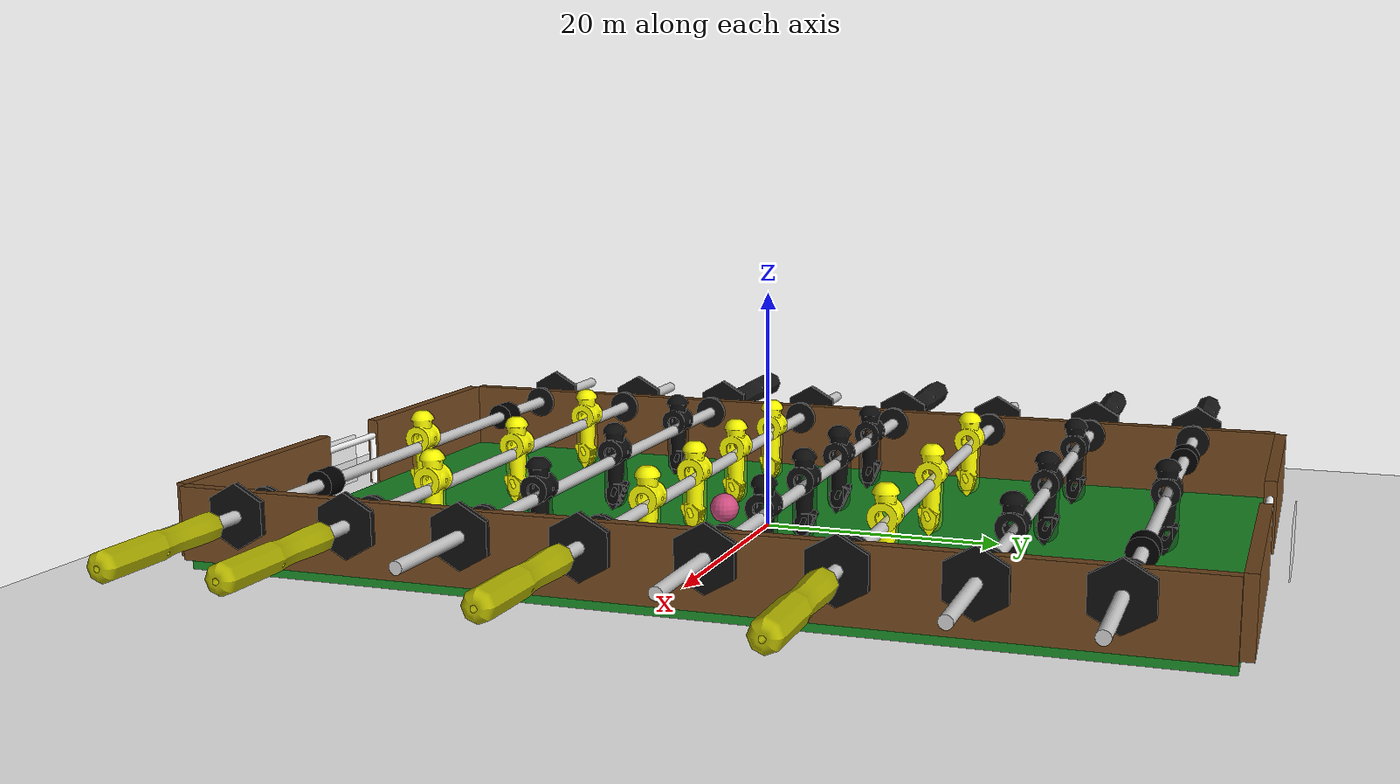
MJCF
<mujoco>
    <default>
      <default class="visual">
        <geom group="2" type="mesh"/>
      </default>
      <default class="collision">
        <geom group="3" type="mesh"/>
      </default>
    </default>

    <asset>
      <mesh name="guy" file="asset/foosman/mesh_down_foosman.obj" scale='0.07 0.07 0.07'/>
      <mesh name="handle" file="asset/handle/foosball_handle.obj" scale='0.1 0.1 0.1'/>
    </asset>

    <option sdf_iterations="20" sdf_initpoints="40">
      <flag contact="enable"/>
    </option>

    <visual>
      <map force="1000"/>
    </visual>

    <statistic meansize="0.2"/>

    <default>
      <geom solref="0.004 1" solimp=".99 .99 .00001" condim="4"/>
    </default>

    <include file="foosball_scene.xml"/>

    <worldbody>

      <!-- Yellow Goalie Rod — 1 player, Y=-33.25 -->
      <body name="y_goal_rod" pos="0 -33.25 4.8" euler="0 90 0">
        <joint name="y_goal_linear" type="slide" axis="0 0 1" range="-12 12"/>
        <joint name="y_goal_rotation" type="hinge" axis="0 0 1" range="-90.0 90.0"/>
        <inertial pos="0 0 0" mass="0.8" diaginertia="50 50 0.03"/>
        <geom name="y_goal_rod" type="cylinder" size="0.5 37" pos="0 0 0" rgba="0.8 0.8 0.8 1"/>
        <!-- Handle -->
        <body name="y_goal_rod_handle" pos="0 0 38" euler="180 0 0">
          <geom type="mesh" mesh="handle" mass='0.01' rgba='0.7 0.7 0.0 1'/>
        </body>
        <!-- Rubber bumpers (goalie gap = 32cm → bumpers at ±16) -->
        <body name="y_goal_rod_r_rubber" pos="0 0 -16" euler="0 0 90">
          <inertial pos="0 0 0" mass="0.05" diaginertia="0.002 0.002 0.003"/>
          <geom name="y_goal_rod_r_rubber" type="cylinder" friction="0.1" size="1.2 1.0" rgba="0.0 0.0 0.0 1"/>
        </body>
        <body name="y_goal_rod_l_rubber" pos="0 0 16" euler="0 0 90">
          <inertial pos="0 0 0" mass="0.05" diaginertia="0.002 0.002 0.003"/>
          <geom name="y_goal_rod_l_rubber" type="cylinder" friction="0.1" size="1.2 1.0" rgba="0.0 0.0 0.0 1"/>
        </body>
        <!-- 1 Yellow Goalkeeper -->
        <body name="y_goal_guy1" pos="0.284 -0.05 0" euler="180 -90 0">
          <inertial pos="0 0 0" mass="0.07" diaginertia="0.001 0.001 0.001"/>
          <geom type="mesh" name="y_goal_guy1_visual" mesh="guy" rgba="0.95 0.95 0.0 1" contype="0" conaffinity="0" group="2"/>
          <geom type="capsule" name="y_goal_guy1" size="1.0 2.0" pos="0 0 -1.0" rgba="0.95 0.95 0.0 0.3" friction="0.5 0.005 0.0001"/>
        </body>
      </body>

      <!-- Yellow Defense Rod — 3 players @ 15cm spacing, Y=-23.75 -->
      <body name="y_def_rod" pos="0 -23.75 4.8" euler="0 90 0">
        <joint name="y_def_linear" type="slide" axis="0 0 1" range="-12 12"/>
        <joint name="y_def_rotation" type="hinge" axis="0 0 1" range="-90.0 90.0"/>
        <inertial pos="0 0 0" mass="0.9" diaginertia="60 60 0.035"/>
        <geom name="y_def_rod" type="cylinder" size="0.5 37" pos="0 0 0" rgba="0.8 0.8 0.8 1"/>
        <body name="y_def_rod_handle" pos="0 0 38" euler="180 0 0">
          <geom type="mesh" mesh="handle" mass='0.01' rgba='0.7 0.7 0.0 1'/>
        </body>

<!-- 3 Yellow Defenders (spacing 15cm: -15, 0, +15) -->
        <body name="y_def_guy1" pos="0.284 -0.05 -15" euler="180 -90 0">
          <inertial pos="0 0 0" mass="0.07" diaginertia="0.001 0.001 0.001"/>
          <geom type="mesh" name="y_def_guy1_visual" mesh="guy" rgba="0.95 0.95 0.0 1" contype="0" conaffinity="0" group="2"/>
          <geom type="capsule" name="y_def_guy1" size="1.0 2.0" pos="0 0 -1.0" rgba="0.95 0.95 0.0 0.3" friction="0.5 0.005 0.0001"/>
        </body>
        <body name="y_def_guy2" pos="0.284 -0.05 0" euler="180 -90 0">
          <inertial pos="0 0 0" mass="0.07" diaginertia="0.001 0.001 0.001"/>
          <geom type="mesh" name="y_def_guy2_visual" mesh="guy" rgba="0.95 0.95 0.0 1" contype="0" conaffinity="0" group="2"/>
          <geom type="capsule" name="y_def_guy2" size="1.0 2.0" pos="0 0 -1.0" rgba="0.95 0.95 0.0 0.3" friction="0.5 0.005 0.0001"/>
        </body>
        <body name="y_def_guy3" pos="0.284 -0.05 15" euler="180 -90 0">
          <inertial pos="0 0 0" mass="0.07" diaginertia="0.001 0.001 0.001"/>
          <geom type="mesh" name="y_def_guy3_visual" mesh="guy" rgba="0.95 0.95 0.0 1" contype="0" conaffinity="0" group="2"/>
          <geom type="capsule" name="y_def_guy3" size="1.0 2.0" pos="0 0 -1.0" rgba="0.95 0.95 0.0 0.3" friction="0.5 0.005 0.0001"/>
        </body>
      </body>

      <!-- Yellow Midfield Rod — 4 players @ 10.2cm spacing, Y=-4.75 -->
      <body name="y_mid_rod" pos="0 -4.75 4.8" euler="0 90 0">
        <joint name="y_mid_linear" type="slide" axis="0 0 1" range="-12 12"/>
        <joint name="y_mid_rotation" type="hinge" axis="0 0 1" range="-90.0 90.0"/>
        <inertial pos="0 0 0" mass="0.85" diaginertia="55 55 0.032"/>
        <geom type="cylinder" size="0.5 37" pos="0 0 0" rgba="0.8 0.8 0.8 1"/>
        <body name="y_mid_rod_handle" pos="0 0 38" euler="180 0 0">
          <geom type="mesh" mesh="handle" mass='0.01' rgba='0.7 0.7 0.0 1'/>
        </body>

<!-- 4 Yellow Midfielders (spacing 10.2cm: -15.3, -5.1, +5.1, +15.3) -->
        <body name="y_mid_guy1" pos="0.284 -0.05 -15.3" euler="180 -90 0">
          <inertial pos="0 0 0" mass="0.07" diaginertia="0.001 0.001 0.001"/>
          <geom type="mesh" name="y_mid_guy1_visual" mesh="guy" rgba="0.95 0.95 0.0 1" contype="0" conaffinity="0" group="2"/>
          <geom type="capsule" name="y_mid_guy1" size="1.0 2.0" pos="0 0 -1.0" rgba="0.95 0.95 0.0 0.3" friction="0.5 0.005 0.0001"/>
        </body>
        <body name="y_mid_guy2" pos="0.284 -0.05 -5.1" euler="180 -90 0">
          <inertial pos="0 0 0" mass="0.07" diaginertia="0.001 0.001 0.001"/>
          <geom type="mesh" name="y_mid_guy2_visual" mesh="guy" rgba="0.95 0.95 0.0 1" contype="0" conaffinity="0" group="2"/>
          <geom type="capsule" name="y_mid_guy2" size="1.0 2.0" pos="0 0 -1.0" rgba="0.95 0.95 0.0 0.3" friction="0.5 0.005 0.0001"/>
        </body>
        <body name="y_mid_guy3" pos="0.284 -0.05 5.1" euler="180 -90 0">
          <inertial pos="0 0 0" mass="0.07" diaginertia="0.001 0.001 0.001"/>
          <geom type="mesh" name="y_mid_guy3_visual" mesh="guy" rgba="0.95 0.95 0.0 1" contype="0" conaffinity="0" group="2"/>
          <geom type="capsule" name="y_mid_guy3" size="1.0 2.0" pos="0 0 -1.0" rgba="0.95 0.95 0.0 0.3" friction="0.5 0.005 0.0001"/>
        </body>
        <body name="y_mid_guy4" pos="0.284 -0.05 15.3" euler="180 -90 0">
          <inertial pos="0 0 0" mass="0.07" diaginertia="0.001 0.001 0.001"/>
          <geom type="mesh" name="y_mid_guy4_visual" mesh="guy" rgba="0.95 0.95 0.0 1" contype="0" conaffinity="0" group="2"/>
          <geom type="capsule" name="y_mid_guy4" size="1.0 2.0" pos="0 0 -1.0" rgba="0.95 0.95 0.0 0.3" friction="0.5 0.005 0.0001"/>
        </body>
      </body>

      <!-- Yellow Attack Rod — 3 players @ 15cm spacing, Y=14.25 -->
      <body name="y_attack_rod" pos="0 14.25 4.8" euler="0 90 0">
        <joint name="y_attack_linear" type="slide" axis="0 0 1" range="-12 12"/>
        <joint name="y_attack_rotation" type="hinge" axis="0 0 1" range="-90.0 90.0"/>
        <inertial pos="0 0 0" mass="0.9" diaginertia="60 60 0.035"/>
        <geom name="y_attack_rod" type="cylinder" size="0.5 37" pos="0 0 0" rgba="0.8 0.8 0.8 1"/>
        <body name="y_attack_rod_handle" pos="0 0 38" euler="180 0 0">
          <geom type="mesh" mesh="handle" mass='0.01' rgba='0.7 0.7 0.0 1'/>
        </body>

<!-- 3 Yellow Attackers (spacing 15cm: -15, 0, +15) -->
        <body name="y_attack_guy1" pos="0.284 -0.05 -15" euler="180 -90 0">
          <inertial pos="0 0 0" mass="0.07" diaginertia="0.001 0.001 0.001"/>
          <geom type="mesh" name="y_attack_guy1_visual" mesh="guy" rgba="0.95 0.95 0.0 1" contype="0" conaffinity="0" group="2"/>
          <geom type="capsule" name="y_attack_guy1" size="1.0 2.0" pos="0 0 -1.0" rgba="0.95 0.95 0.0 0.3" friction="0.5 0.005 0.0001"/>
        </body>
        <body name="y_attack_guy2" pos="0.284 -0.05 0" euler="180 -90 0">
          <inertial pos="0 0 0" mass="0.07" diaginertia="0.001 0.001 0.001"/>
          <geom type="mesh" name="y_attack_guy2_visual" mesh="guy" rgba="0.95 0.95 0.0 1" contype="0" conaffinity="0" group="2"/>
          <geom type="capsule" name="y_attack_guy2" size="1.0 2.0" pos="0 0 -1.0" rgba="0.95 0.95 0.0 0.3" friction="0.5 0.005 0.0001"/>
        </body>
        <body name="y_attack_guy3" pos="0.284 -0.05 15" euler="180 -90 0">
          <inertial pos="0 0 0" mass="0.07" diaginertia="0.001 0.001 0.001"/>
          <geom type="mesh" name="y_attack_guy3_visual" mesh="guy" rgba="0.95 0.95 0.0 1" contype="0" conaffinity="0" group="2"/>
          <geom type="capsule" name="y_attack_guy3" size="1.0 2.0" pos="0 0 -1.0" rgba="0.95 0.95 0.0 0.3" friction="0.5 0.005 0.0001"/>
        </body>
      </body>

      <!-- Blue Goalie Rod — 1 player, Y=33.25 -->
      <body name="b_goal_rod" pos="0 33.25 4.8" euler="0 -90 180">
        <joint name="b_goal_linear" type="slide" axis="0 0 1" range="-12 12"/>
        <joint name="b_goal_rotation" type="hinge" axis="0 0 1" range="-90.0 90.0"/>
        <inertial pos="0 0 0" mass="0.8" diaginertia="50 50 0.03"/>
        <geom name="b_goal_rod" type="cylinder" size="0.5 37" pos="0 0 0" rgba="0.8 0.8 0.8 1"/>
        <body name="b_goal_rod_handle" pos="0 0 38" euler="180 0 0">
          <geom type="mesh" mesh="handle" mass='0.01' rgba='0.1 0.1 0.1 1'/>
        </body>
        <body name="b_goal_rod_r_rubber" pos="0 0 -16" euler="0 0 90">
          <inertial pos="0 0 0" mass="0.05" diaginertia="0.002 0.002 0.003"/>
          <geom name="b_goal_rod_r_rubber" type="cylinder" friction="0.1" size="1.2 1.0" rgba="0.0 0.0 0.0 1"/>
        </body>
        <body name="b_goal_rod_l_rubber" pos="0 0 16" euler="0 0 90">
          <inertial pos="0 0 0" mass="0.05" diaginertia="0.002 0.002 0.003"/>
          <geom name="b_goal_rod_l_rubber" type="cylinder" friction="0.1" size="1.2 1.0" rgba="0.0 0.0 0.0 1"/>
        </body>
        <!-- 1 Blue Goalkeeper -->
        <body name="b_goal_guy1" pos="0.284 -0.05 0" euler="180 -90 0">
          <inertial pos="0 0 0" mass="0.07" diaginertia="0.001 0.001 0.001"/>
          <geom type="mesh" name="b_goal_guy1_visual" mesh="guy" rgba="0.05 0.05 0.05 1" contype="0" conaffinity="0" group="2"/>
          <geom type="capsule" name="b_goal_guy1" size="1.0 2.0" pos="0 0 -1.0" rgba="0.05 0.05 0.05 0.3" friction="0.5 0.005 0.0001"/>
        </body>
      </body>

      <!-- Blue Defense Rod — 3 players @ 15cm spacing, Y=23.75 -->
      <body name="b_def_rod" pos="0 23.75 4.8" euler="0 -90 180">
        <joint name="b_def_linear" type="slide" axis="0 0 1" range="-12 12"/>
        <joint name="b_def_rotation" type="hinge" axis="0 0 1" range="-90.0 90.0"/>
        <inertial pos="0 0 0" mass="0.9" diaginertia="60 60 0.035"/>
        <geom name="b_def_rod" type="cylinder" size="0.5 37" pos="0 0 0" rgba="0.8 0.8 0.8 1"/>
        <body name="b_def_rod_handle" pos="0 0 38" euler="180 0 0">
          <geom type="mesh" mesh="handle" mass='0.01' rgba='0.1 0.1 0.1 1'/>
        </body>

<!-- 3 Blue Defenders (spacing 15cm: -15, 0, +15) -->
        <body name="b_def_guy1" pos="0.284 -0.05 -15" euler="180 -90 0">
          <inertial pos="0 0 0" mass="0.07" diaginertia="0.001 0.001 0.001"/>
          <geom type="mesh" name="b_def_guy1_visual" mesh="guy" rgba="0.05 0.05 0.05 1" contype="0" conaffinity="0" group="2"/>
          <geom type="capsule" name="b_def_guy1" size="1.0 2.0" pos="0 0 -1.0" rgba="0.05 0.05 0.05 0.3" friction="0.5 0.005 0.0001"/>
        </body>
        <body name="b_def_guy2" pos="0.284 -0.05 0" euler="180 -90 0">
          <inertial pos="0 0 0" mass="0.07" diaginertia="0.001 0.001 0.001"/>
          <geom type="mesh" name="b_def_guy2_visual" mesh="guy" rgba="0.05 0.05 0.05 1" contype="0" conaffinity="0" group="2"/>
          <geom type="capsule" name="b_def_guy2" size="1.0 2.0" pos="0 0 -1.0" rgba="0.05 0.05 0.05 0.3" friction="0.5 0.005 0.0001"/>
        </body>
        <body name="b_def_guy3" pos="0.284 -0.05 15" euler="180 -90 0">
          <inertial pos="0 0 0" mass="0.07" diaginertia="0.001 0.001 0.001"/>
          <geom type="mesh" name="b_def_guy3_visual" mesh="guy" rgba="0.05 0.05 0.05 1" contype="0" conaffinity="0" group="2"/>
          <geom type="capsule" name="b_def_guy3" size="1.0 2.0" pos="0 0 -1.0" rgba="0.05 0.05 0.05 0.3" friction="0.5 0.005 0.0001"/>
        </body>
      </body>

      <!-- Blue Midfield Rod — 4 players @ 10.2cm spacing, Y=4.75 -->
      <body name="b_mid_rod" pos="0 4.75 4.8" euler="0 -90 180">
        <joint name="b_mid_linear" type="slide" axis="0 0 1" range="-12 12"/>
        <joint name="b_mid_rotation" type="hinge" axis="0 0 1" range="-90.0 90.0"/>
        <inertial pos="0 0 0" mass="0.85" diaginertia="55 55 0.032"/>
        <geom name="b_mid_rod" type="cylinder" size="0.5 37" pos="0 0 0" rgba="0.8 0.8 0.8 1"/>
        <body name="b_mid_rod_handle" pos="0 0 38" euler="180 0 0">
          <geom type="mesh" mesh="handle" mass='0.01' rgba='0.1 0.1 0.1 1'/>
        </body>

<!-- 4 Blue Midfielders (spacing 10.2cm: -15.3, -5.1, +5.1, +15.3) -->
        <body name="b_mid_guy1" pos="0.284 -0.05 -15.3" euler="180 -90 0">
          <inertial pos="0 0 0" mass="0.07" diaginertia="0.001 0.001 0.001"/>
          <geom type="mesh" name="b_mid_guy1_visual" mesh="guy" rgba="0.05 0.05 0.05 1" contype="0" conaffinity="0" group="2"/>
          <geom type="capsule" name="b_mid_guy1" size="1.0 2.0" pos="0 0 -1.0" rgba="0.05 0.05 0.05 0.3" friction="0.5 0.005 0.0001"/>
        </body>
        <body name="b_mid_guy2" pos="0.284 -0.05 -5.1" euler="180 -90 0">
          <inertial pos="0 0 0" mass="0.07" diaginertia="0.001 0.001 0.001"/>
          <geom type="mesh" name="b_mid_guy2_visual" mesh="guy" rgba="0.05 0.05 0.05 1" contype="0" conaffinity="0" group="2"/>
          <geom type="capsule" name="b_mid_guy2" size="1.0 2.0" pos="0 0 -1.0" rgba="0.05 0.05 0.05 0.3" friction="0.5 0.005 0.0001"/>
        </body>
        <body name="b_mid_guy3" pos="0.284 -0.05 5.1" euler="180 -90 0">
          <inertial pos="0 0 0" mass="0.07" diaginertia="0.001 0.001 0.001"/>
          <geom type="mesh" name="b_mid_guy3_visual" mesh="guy" rgba="0.05 0.05 0.05 1" contype="0" conaffinity="0" group="2"/>
          <geom type="capsule" name="b_mid_guy3" size="1.0 2.0" pos="0 0 -1.0" rgba="0.05 0.05 0.05 0.3" friction="0.5 0.005 0.0001"/>
        </body>
        <body name="b_mid_guy4" pos="0.284 -0.05 15.3" euler="180 -90 0">
          <inertial pos="0 0 0" mass="0.07" diaginertia="0.001 0.001 0.001"/>
          <geom type="mesh" name="b_mid_guy4_visual" mesh="guy" rgba="0.05 0.05 0.05 1" contype="0" conaffinity="0" group="2"/>
          <geom type="capsule" name="b_mid_guy4" size="1.0 2.0" pos="0 0 -1.0" rgba="0.05 0.05 0.05 0.3" friction="0.5 0.005 0.0001"/>
        </body>
      </body>

      <!-- Blue Attack Rod — 3 players @ 15cm spacing, Y=-14.25 -->
      <body name="b_attack_rod" pos="0 -14.25 4.8" euler="0 -90 180">
        <joint name="b_attack_linear" type="slide" axis="0 0 1" range="-12 12"/>
        <joint name="b_attack_rotation" type="hinge" axis="0 0 1" range="-90.0 90.0"/>
        <inertial pos="0 0 0" mass="0.9" diaginertia="60 60 0.035"/>
        <geom name="b_attack_rod" type="cylinder" size="0.5 37" pos="0 0 0" rgba="0.8 0.8 0.8 1"/>
        <body name="b_attack_rod_handle" pos="0 0 38" euler="180 0 0">
          <geom type="mesh" mesh="handle" mass='0.01' rgba='0.1 0.1 0.1 1'/>
        </body>

<!-- 3 Blue Attackers (spacing 15cm: -15, 0, +15) -->
        <body name="b_attack_guy1" pos="0.284 -0.05 -15" euler="180 -90 0">
          <inertial pos="0 0 0" mass="0.07" diaginertia="0.001 0.001 0.001"/>
          <geom type="mesh" name="b_attack_guy1_visual" mesh="guy" rgba="0.05 0.05 0.05 1" contype="0" conaffinity="0" group="2"/>
          <geom type="capsule" name="b_attack_guy1" size="1.0 2.0" pos="0 0 -1.0" rgba="0.05 0.05 0.05 0.3" friction="0.5 0.005 0.0001"/>
        </body>
        <body name="b_attack_guy2" pos="0.284 -0.05 0" euler="180 -90 0">
          <inertial pos="0 0 0" mass="0.07" diaginertia="0.001 0.001 0.001"/>
          <geom type="mesh" name="b_attack_guy2_visual" mesh="guy" rgba="0.05 0.05 0.05 1" contype="0" conaffinity="0" group="2"/>
          <geom type="capsule" name="b_attack_guy2" size="1.0 2.0" pos="0 0 -1.0" rgba="0.05 0.05 0.05 0.3" friction="0.5 0.005 0.0001"/>
        </body>
        <body name="b_attack_guy3" pos="0.284 -0.05 15" euler="180 -90 0">
          <inertial pos="0 0 0" mass="0.07" diaginertia="0.001 0.001 0.001"/>
          <geom type="mesh" name="b_attack_guy3_visual" mesh="guy" rgba="0.05 0.05 0.05 1" contype="0" conaffinity="0" group="2"/>
          <geom type="capsule" name="b_attack_guy3" size="1.0 2.0" pos="0 0 -1.0" rgba="0.05 0.05 0.05 0.3" friction="0.5 0.005 0.0001"/>
        </body>
      </body>

      <!-- MATCH BALL — diameter 2.5cm, rests on playing surface (Z=0) -->
      <body name="ball" pos="0 -4 1.25">
        <joint name="ball_x" type="slide" axis="1 0 0" frictionloss="20"/>
        <joint name="ball_y" type="slide" axis="0 1 0" frictionloss="20"/>
        <geom name="ball" type="sphere" size="1.25" mass="0.1" rgba="0.8 0.3 0.5 1"
              friction="0.01 0.1 10"/>
      </body>

    </worldbody>

    <!-- Exclude contact between side rubbers and rods -->
    <contact>
      <exclude body1="table_side_rubber_y_goal_r" body2="y_goal_rod"/>
      <exclude body1="table_side_rubber_y_goal_l" body2="y_goal_rod"/>
      <exclude body1="table_side_rubber_y_def_r" body2="y_def_rod"/>
      <exclude body1="table_side_rubber_y_def_l" body2="y_def_rod"/>
      <exclude body1="table_side_rubber_y_mid_r" body2="y_mid_rod"/>
      <exclude body1="table_side_rubber_y_mid_l" body2="y_mid_rod"/>
      <exclude body1="table_side_rubber_y_attack_r" body2="y_attack_rod"/>
      <exclude body1="table_side_rubber_y_attack_l" body2="y_attack_rod"/>

      <exclude body1="table_side_rubber_b_goal_r" body2="b_goal_rod"/>
      <exclude body1="table_side_rubber_b_goal_l" body2="b_goal_rod"/>
      <exclude body1="table_side_rubber_b_def_r" body2="b_def_rod"/>
      <exclude body1="table_side_rubber_b_def_l" body2="b_def_rod"/>
      <exclude body1="table_side_rubber_b_mid_r" body2="b_mid_rod"/>
      <exclude body1="table_side_rubber_b_mid_l" body2="b_mid_rod"/>
      <exclude body1="table_side_rubber_b_attack_r" body2="b_attack_rod"/>
      <exclude body1="table_side_rubber_b_attack_l" body2="b_attack_rod"/>
    </contact>

    <!-- Position-servo actuators: ctrlrange limited to ±1.57 rad (π/2) for v3 -->
    <actuator>
      <position name="y_goal_linear" joint="y_goal_linear" ctrlrange="-8.25 8.25" kp="20000" kv="300"/>
      <position name="y_goal_rotation" joint="y_goal_rotation" ctrlrange="-1.57 1.57" kp="70000" kv="1000"/>
      <position name="y_def_linear" joint="y_def_linear" ctrlrange="-9.25 9.25" kp="10000" kv="200"/>
      <position name="y_def_rotation" joint="y_def_rotation" ctrlrange="-1.57 1.57" kp="40000" kv="500"/>
      <position name="y_mid_linear" joint="y_mid_linear" ctrlrange="-8.95 8.95" kp="40000" kv="500"/>
      <position name="y_mid_rotation" joint="y_mid_rotation" ctrlrange="-1.57 1.57" kp="150000" kv="2000"/>
      <position name="y_attack_linear" joint="y_attack_linear" ctrlrange="-9.25 9.25" kp="20000" kv="300"/>
      <position name="y_attack_rotation" joint="y_attack_rotation" ctrlrange="-1.57 1.57" kp="70000" kv="1000"/>

      <position name="b_goal_linear" joint="b_goal_linear" ctrlrange="-8.25 8.25" kp="20000" kv="300"/>
      <position name="b_goal_rotation" joint="b_goal_rotation" ctrlrange="-1.57 1.57" kp="70000" kv="1000"/>
      <position name="b_def_linear" joint="b_def_linear" ctrlrange="-9.25 9.25" kp="10000" kv="200"/>
      <position name="b_def_rotation" joint="b_def_rotation" ctrlrange="-1.57 1.57" kp="40000" kv="500"/>
      <position name="b_mid_linear" joint="b_mid_linear" ctrlrange="-8.95 8.95" kp="40000" kv="500"/>
      <position name="b_mid_rotation" joint="b_mid_rotation" ctrlrange="-1.57 1.57" kp="150000" kv="2000"/>
      <position name="b_attack_linear" joint="b_attack_linear" ctrlrange="-9.25 9.25" kp="20000" kv="300"/>
      <position name="b_attack_rotation" joint="b_attack_rotation" ctrlrange="-1.57 1.57" kp="70000" kv="1000"/>
    </actuator>

  </mujoco>

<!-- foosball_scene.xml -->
<mujoco>

    <statistic meansize=".05"/>

    <default>
      <geom solref="0.004 1" solimp=".99 .99 .00001" condim="4"/>
    </default>

    <asset>
      <mesh name="outside_rubber" file="asset/outside_rubber/table_outside_rubber.obj" scale='0.1 0.1 0.1'/>
    </asset>

    <worldbody>
      <light directional="true" specular="0.2 0.2 0.2" pos="0 0 4" dir="0 0 -1"/>

      <body name="background" pos="0 0 -5" euler="0 0 0">
        <geom type="plane" size="500 500 .01" rgba="1.0 1.0 1.0 1.0" contype="0" conaffinity="0"/>
      </body>

      <!-- Playing field: half-width=24.25, half-length=40.5 (real 48.5×81 cm)
           Box top surface at Z=0 (the playing surface). -->
      <body name="ground" pos="0 0 -0.5" euler="0 0 180">
        <geom type="box" size="24.25 40.5 0.5" rgba="0.1 0.55 0.15 1" friction="0.01 0.1 10"/>
      </body>

      <!-- Y goalie rod Y=-33.25 -->
      <body name="table_side_rubber_y_goal_r">
        <geom type="cylinder" pos="-24.25 -33.25 4.8" euler="90 90 0" size="1.5 0.25"
              contype="5" conaffinity="5" rgba='0.05 0.05 0.05 1' friction="0.01" group="2"/>
      </body>
      <body name="table_side_rubber_y_goal_l">
        <geom type="cylinder" pos="24.25 -33.25 4.8" euler="90 90 0" size="1.5 0.25"
              contype="5" conaffinity="5" rgba='0.05 0.05 0.05 1' friction="0.01" group="2"/>
      </body>

      <!-- Y defense rod Y=-23.75 -->
      <body name="table_side_rubber_y_def_r">
        <geom type="cylinder" pos="-24.25 -23.75 4.8" euler="90 90 0" size="1.5 0.25"
              contype="5" conaffinity="5" rgba='0.05 0.05 0.05 1' friction="0.01" group="2"/>
      </body>
      <body name="table_side_rubber_y_def_l">
        <geom type="cylinder" pos="24.25 -23.75 4.8" euler="90 90 0" size="1.5 0.25"
              contype="5" conaffinity="5" rgba='0.05 0.05 0.05 1' friction="0.01" group="2"/>
      </body>

      <!-- Y midfield rod Y=-4.75 -->
      <body name="table_side_rubber_y_mid_r">
        <geom type="cylinder" pos="-24.25 -4.75 4.8" euler="90 90 0" size="1.5 0.25"
              contype="5" conaffinity="5" rgba='0.05 0.05 0.05 1' friction="0.01" group="2"/>
      </body>
      <body name="table_side_rubber_y_mid_l">
        <geom type="cylinder" pos="24.25 -4.75 4.8" euler="90 90 0" size="1.5 0.25"
              contype="5" conaffinity="5" rgba='0.05 0.05 0.05 1' friction="0.01" group="2"/>
      </body>

      <!-- Y attack rod Y=14.25 -->
      <body name="table_side_rubber_y_attack_r">
        <geom type="cylinder" pos="-24.25 14.25 4.8" euler="90 90 0" size="1.5 0.25"
              contype="5" conaffinity="5" rgba='0.05 0.05 0.05 1' friction="0.01" group="2"/>
      </body>
      <body name="table_side_rubber_y_attack_l">
        <geom type="cylinder" pos="24.25 14.25 4.8" euler="90 90 0" size="1.5 0.25"
              contype="5" conaffinity="5" rgba='0.05 0.05 0.05 1' friction="0.01" group="2"/>
      </body>

      <!-- B goalie rod Y=33.25 -->
      <body name="table_side_rubber_b_goal_r">
        <geom type="cylinder" pos="-24.25 33.25 4.8" euler="90 90 0" size="1.5 0.25"
              contype="5" conaffinity="5" rgba='0.05 0.05 0.05 1' friction="0.01" group="2"/>
      </body>
      <body name="table_side_rubber_b_goal_l">
        <geom type="cylinder" pos="24.25 33.25 4.8" euler="90 90 0" size="1.5 0.25"
              contype="5" conaffinity="5" rgba='0.05 0.05 0.05 1' friction="0.01" group="2"/>
      </body>

      <!-- B defense rod Y=23.75 -->
      <body name="table_side_rubber_b_def_r">
        <geom type="cylinder" pos="-24.25 23.75 4.8" euler="90 90 0" size="1.5 0.25"
              contype="5" conaffinity="5" rgba='0.05 0.05 0.05 1' friction="0.01" group="2"/>
      </body>
      <body name="table_side_rubber_b_def_l">
        <geom type="cylinder" pos="24.25 23.75 4.8" euler="90 90 0" size="1.5 0.25"
              contype="5" conaffinity="5" rgba='0.05 0.05 0.05 1' friction="0.01" group="2"/>
      </body>

      <!-- B midfield rod Y=4.75 -->
      <body name="table_side_rubber_b_mid_r">
        <geom type="cylinder" pos="-24.25 4.75 4.8" euler="90 90 0" size="1.5 0.25"
              contype="5" conaffinity="5" rgba='0.05 0.05 0.05 1' friction="0.01" group="2"/>
      </body>
      <body name="table_side_rubber_b_mid_l">
        <geom type="cylinder" pos="24.25 4.75 4.8" euler="90 90 0" size="1.5 0.25"
              contype="5" conaffinity="5" rgba='0.05 0.05 0.05 1' friction="0.01" group="2"/>
      </body>

      <!-- B attack rod Y=-14.25 -->
      <body name="table_side_rubber_b_attack_r">
        <geom type="cylinder" pos="-24.25 -14.25 4.8" euler="90 90 0" size="1.5 0.25"
              contype="5" conaffinity="5" rgba='0.05 0.05 0.05 1' friction="0.01" group="2"/>
      </body>
      <body name="table_side_rubber_b_attack_l">
        <geom type="cylinder" pos="24.25 -14.25 4.8" euler="90 90 0" size="1.5 0.25"
              contype="5" conaffinity="5" rgba='0.05 0.05 0.05 1' friction="0.01" group="2"/>
      </body>

    <!-- Outside rubber pads (visual only) -->
      <body name="outside_rubber_y_goal_r" pos="-28 -33.25 4.8" euler="0 0 90">
        <geom contype="0" conaffinity="0" type="mesh" mesh="outside_rubber" rgba='0.05 0.05 0.05 1' group="2"/>
      </body>
      <body name="outside_rubber_y_goal_l" pos="28 -33.25 4.8" euler="0 0 90">
        <geom contype="0" conaffinity="0" type="mesh" mesh="outside_rubber" rgba='0.05 0.05 0.05 1' group="2"/>
      </body>
      <body name="outside_rubber_y_def_r" pos="-28 -23.75 4.8" euler="0 0 90">
        <geom contype="0" conaffinity="0" type="mesh" mesh="outside_rubber" rgba='0.05 0.05 0.05 1' group="2"/>
      </body>
      <body name="outside_rubber_y_def_l" pos="28 -23.75 4.8" euler="0 0 90">
        <geom contype="0" conaffinity="0" type="mesh" mesh="outside_rubber" rgba='0.05 0.05 0.05 1' group="2"/>
      </body>
      <body name="outside_rubber_y_mid_r" pos="-28 -4.75 4.8" euler="0 0 90">
        <geom contype="0" conaffinity="0" type="mesh" mesh="outside_rubber" rgba='0.05 0.05 0.05 1' group="2"/>
      </body>
      <body name="outside_rubber_y_mid_l" pos="28 -4.75 4.8" euler="0 0 90">
        <geom contype="0" conaffinity="0" type="mesh" mesh="outside_rubber" rgba='0.05 0.05 0.05 1' group="2"/>
      </body>
      <body name="outside_rubber_y_attack_r" pos="-28 14.25 4.8" euler="0 0 90">
        <geom contype="0" conaffinity="0" type="mesh" mesh="outside_rubber" rgba='0.05 0.05 0.05 1' group="2"/>
      </body>
      <body name="outside_rubber_y_attack_l" pos="28 14.25 4.8" euler="0 0 90">
        <geom contype="0" conaffinity="0" type="mesh" mesh="outside_rubber" rgba='0.05 0.05 0.05 1' group="2"/>
      </body>

      <body name="outside_rubber_b_goal_r" pos="-28 33.25 4.8" euler="0 0 90">
        <geom contype="0" conaffinity="0" type="mesh" mesh="outside_rubber" rgba='0.05 0.05 0.05 1' group="2"/>
      </body>
      <body name="outside_rubber_b_goal_l" pos="28 33.25 4.8" euler="0 0 90">
        <geom contype="0" conaffinity="0" type="mesh" mesh="outside_rubber" rgba='0.05 0.05 0.05 1' group="2"/>
      </body>
      <body name="outside_rubber_b_def_r" pos="-28 23.75 4.8" euler="0 0 90">
        <geom contype="0" conaffinity="0" type="mesh" mesh="outside_rubber" rgba='0.05 0.05 0.05 1' group="2"/>
      </body>
      <body name="outside_rubber_b_def_l" pos="28 23.75 4.8" euler="0 0 90">
        <geom contype="0" conaffinity="0" type="mesh" mesh="outside_rubber" rgba='0.05 0.05 0.05 1' group="2"/>
      </body>
      <body name="outside_rubber_b_mid_r" pos="-28 4.75 4.8" euler="0 0 90">
        <geom contype="0" conaffinity="0" type="mesh" mesh="outside_rubber" rgba='0.05 0.05 0.05 1' group="2"/>
      </body>
      <body name="outside_rubber_b_mid_l" pos="28 4.75 4.8" euler="0 0 90">
        <geom contype="0" conaffinity="0" type="mesh" mesh="outside_rubber" rgba='0.05 0.05 0.05 1' group="2"/>
      </body>
      <body name="outside_rubber_b_attack_r" pos="-28 -14.25 4.8" euler="0 0 90">
        <geom contype="0" conaffinity="0" type="mesh" mesh="outside_rubber" rgba='0.05 0.05 0.05 1' group="2"/>
      </body>
      <body name="outside_rubber_b_attack_l" pos="28 -14.25 4.8" euler="0 0 90">
        <geom contype="0" conaffinity="0" type="mesh" mesh="outside_rubber" rgba='0.05 0.05 0.05 1' group="2"/>
      </body>

      <!-- SIDE WALLS — long brown boxes along the full length -->
      <!-- Left wall at X = -24.25 -->
      <body name="wall_left" pos="-24.75 0 3">
        <geom type="box" size="0.5 40.5 3" rgba="0.45 0.28 0.12 1"
              contype="0" conaffinity="0" group="2"/>
      </body>
      <!-- Right wall at X = +24.25 -->
      <body name="wall_right" pos="24.75 0 3">
        <geom type="box" size="0.5 40.5 3" rgba="0.45 0.28 0.12 1"
              contype="0" conaffinity="0" group="2"/>
      </body>

      <!-- END WALL — Yellow end (Y = -40.5), split around goal opening (X ±4.0) -->
      <!-- Left segment: X from -24.25 to -4.0 → half-width 10.125, center X = -14.125 -->
      <body name="wall_y_end_left" pos="-14.125 -41.0 3">
        <geom type="box" size="10.125 0.5 3" rgba="0.45 0.28 0.12 1"
              contype="0" conaffinity="0" group="2"/>
      </body>
      <!-- Right segment: X from 4.0 to 24.25 → center X = 14.125 -->
      <body name="wall_y_end_right" pos="14.125 -41.0 3">
        <geom type="box" size="10.125 0.5 3" rgba="0.45 0.28 0.12 1"
              contype="0" conaffinity="0" group="2"/>
      </body>

      <!-- END WALL — Blue end (Y = +40.5), split around goal opening -->
      <body name="wall_b_end_left" pos="-14.125 41.0 3">
        <geom type="box" size="10.125 0.5 3" rgba="0.45 0.28 0.12 1"
              contype="0" conaffinity="0" group="2"/>
      </body>
      <body name="wall_b_end_right" pos="14.125 41.0 3">
        <geom type="box" size="10.125 0.5 3" rgba="0.45 0.28 0.12 1"
              contype="0" conaffinity="0" group="2"/>
      </body>

      <!-- YELLOW GOAL (Y = -40.5) — white posts + crossbar, goal height 4.5cm -->
      <!-- Left post -->
      <body name="goal_y_post_left" pos="-4.0 -41.0 2.25">
        <geom type="cylinder" size="0.3 2.25" rgba="1 1 1 1"
              contype="0" conaffinity="0" group="2"/>
      </body>
      <!-- Right post -->
      <body name="goal_y_post_right" pos="4.0 -41.0 2.25">
        <geom type="cylinder" size="0.3 2.25" rgba="1 1 1 1"
              contype="0" conaffinity="0" group="2"/>
      </body>
      <!-- Crossbar -->
      <body name="goal_y_crossbar" pos="0 -41.0 4.5" euler="0 90 0">
        <geom type="cylinder" size="0.3 4.0" rgba="1 1 1 1"
              contype="0" conaffinity="0" group="2"/>
      </body>
      <!-- Back net (thin box behind goal) -->
      <body name="goal_y_net" pos="0 -43.0 2.25">
        <geom type="box" size="4.0 0.05 2.25" rgba="0.85 0.85 0.85 0.4"
              contype="0" conaffinity="0" group="2"/>
      </body>

      <!-- BLUE GOAL (Y = +40.5) — white posts + crossbar -->
      <!-- Left post -->
      <body name="goal_b_post_left" pos="-4.0 41.0 2.25">
        <geom type="cylinder" size="0.3 2.25" rgba="1 1 1 1"
              contype="0" conaffinity="0" group="2"/>
      </body>
      <!-- Right post -->
      <body name="goal_b_post_right" pos="4.0 41.0 2.25">
        <geom type="cylinder" size="0.3 2.25" rgba="1 1 1 1"
              contype="0" conaffinity="0" group="2"/>
      </body>
      <!-- Crossbar -->
      <body name="goal_b_crossbar" pos="0 41.0 4.5" euler="0 90 0">
        <geom type="cylinder" size="0.3 4.0" rgba="1 1 1 1"
              contype="0" conaffinity="0" group="2"/>
      </body>
      <!-- Back net -->
      <body name="goal_b_net" pos="0 43.0 2.25">
        <geom type="box" size="4.0 0.05 2.25" rgba="0.85 0.85 0.85 0.4"
              contype="0" conaffinity="0" group="2"/>
      </body>

    </worldbody>
  </mujoco>
